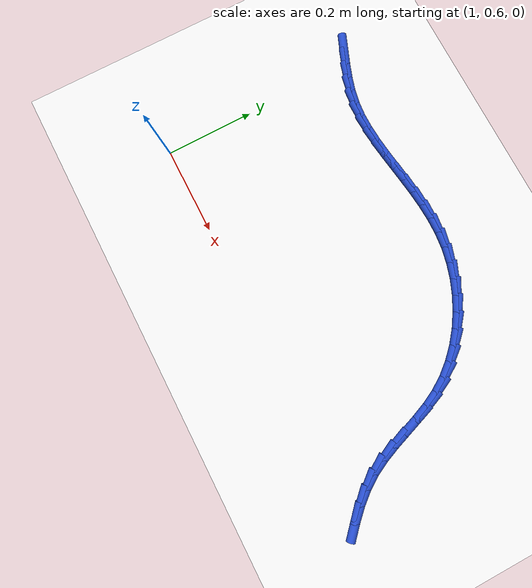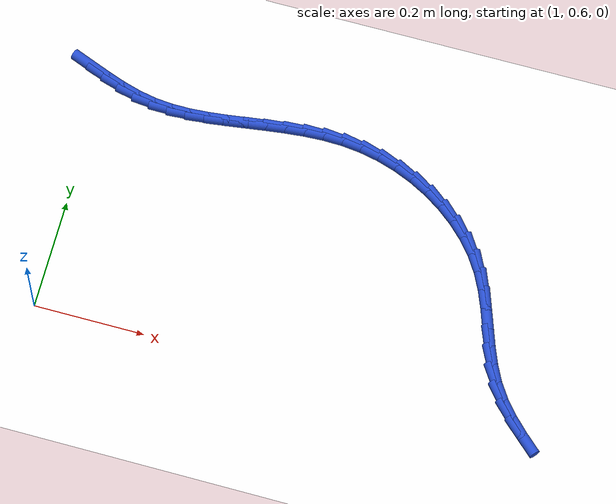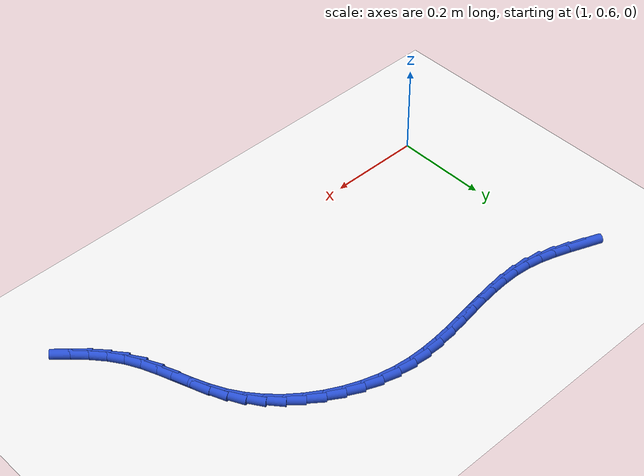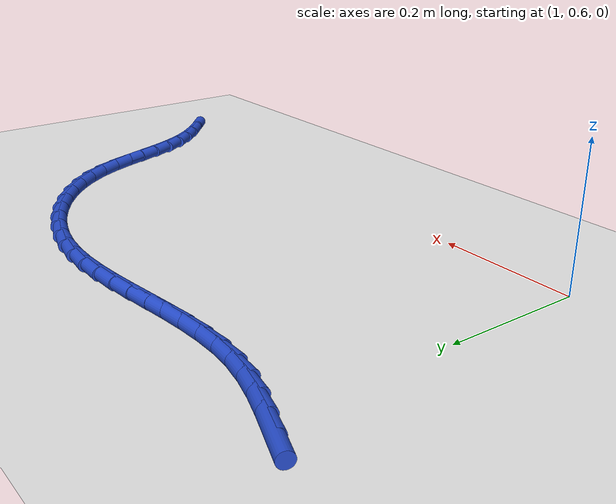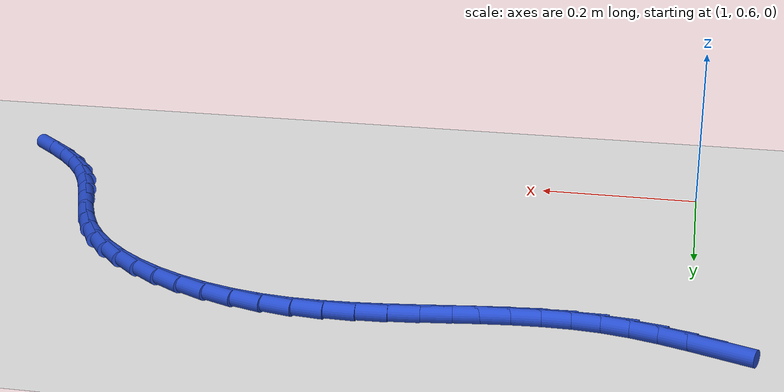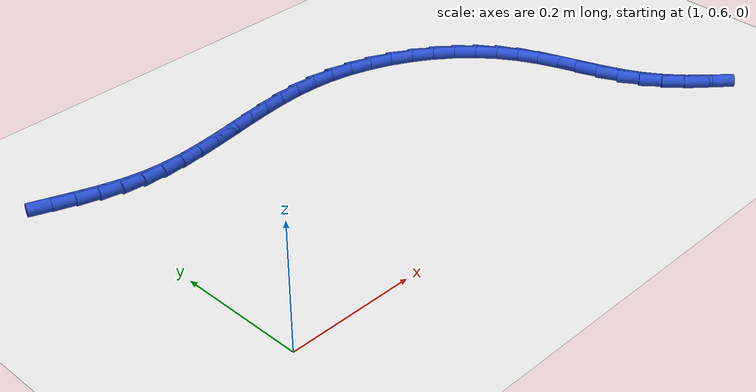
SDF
<sdf version="1.6">
 <world name="default">
  <model name="ground_plane">
   <static>1</static>
   <link name="link">
    <collision name="collision">
     <geometry><plane><normal>0 0 1</normal><size>100 100</size></plane></geometry>
     <surface><friction><ode><mu>100</mu><mu2>50</mu2></ode></friction></surface>
    </collision>
    <visual name="visual">
     <cast_shadows>0</cast_shadows>
     <geometry><plane><normal>0 0 1</normal><size>100 100</size></plane></geometry>
     <material>
      <script><uri>file://media/materials/scripts/gazebo.material</uri><name>Gazebo/WhiteGlow</name></script>
     </material>
    </visual>
   </link>
  </model>
  <model name="line">
   <link name="link_49">
    <pose>0.9694721577611478 1.0599744888120681 0.01 0 1.57 -0.37158965942968897</pose>
    <collision name="collision">
     <geometry><cylinder><radius>0.01</radius><length>0.08</length></cylinder></geometry>
    </collision>
    <visual name="visual">
     <material>
      <script><name>Gazebo/Blue</name><uri>file://media/materials/scripts/gazebo.material</uri></script>
     </material>
     <geometry><cylinder><radius>0.01</radius><length>0.08</length></cylinder></geometry>
    </visual>
   </link>
   <link name="link_50">
    <pose>1.001331518816741 1.0475591157711936 0.01 0 1.57 -0.3403551428548425</pose>
    <collision name="collision">
     <geometry><cylinder><radius>0.01</radius><length>0.08</length></cylinder></geometry>
    </collision>
    <visual name="visual">
     <material>
      <script><name>Gazebo/Blue</name><uri>file://media/materials/scripts/gazebo.material</uri></script>
     </material>
     <geometry><cylinder><radius>0.01</radius><length>0.08</length></cylinder></geometry>
    </visual>
   </link>
   <link name="link_51">
    <pose>1.0329152924165161 1.036374148413972 0.01 0 1.57 -0.2818989669265441</pose>
    <collision name="collision">
     <geometry><cylinder><radius>0.01</radius><length>0.08</length></cylinder></geometry>
    </collision>
    <visual name="visual">
     <material>
      <script><name>Gazebo/Blue</name><uri>file://media/materials/scripts/gazebo.material</uri></script>
     </material>
     <geometry><cylinder><radius>0.01</radius><length>0.08</length></cylinder></geometry>
    </visual>
   </link>
   <link name="link_52">
    <pose>1.0645469397779832 1.0272132614957707 0.01 0 1.57 -0.19566842280877916</pose>
    <collision name="collision">
     <geometry><cylinder><radius>0.01</radius><length>0.08</length></cylinder></geometry>
    </collision>
    <visual name="visual">
     <material>
      <script><name>Gazebo/Blue</name><uri>file://media/materials/scripts/gazebo.material</uri></script>
     </material>
     <geometry><cylinder><radius>0.01</radius><length>0.08</length></cylinder></geometry>
    </visual>
   </link>
   <link name="link_53">
    <pose>1.0965499221033381 1.0208701297156095 0.01 0 1.57 -0.0910905827970096</pose>
    <collision name="collision">
     <geometry><cylinder><radius>0.01</radius><length>0.08</length></cylinder></geometry>
    </collision>
    <visual name="visual">
     <material>
      <script><name>Gazebo/Blue</name><uri>file://media/materials/scripts/gazebo.material</uri></script>
     </material>
     <geometry><cylinder><radius>0.01</radius><length>0.08</length></cylinder></geometry>
    </visual>
   </link>
   <link name="link_54">
    <pose>1.1291800683508 1.0178895824220704 0.01 0 1.57 -0.001515008681421192</pose>
    <collision name="collision">
     <geometry><cylinder><radius>0.01</radius><length>0.08</length></cylinder></geometry>
    </collision>
    <visual name="visual">
     <material>
      <script><name>Gazebo/Blue</name><uri>file://media/materials/scripts/gazebo.material</uri></script>
     </material>
     <geometry><cylinder><radius>0.01</radius><length>0.08</length></cylinder></geometry>
    </visual>
   </link>
   <link name="link_55">
    <pose>1.1624276098938178 1.0178392120694593 0.01 0 1.57 0.06523859716427143</pose>
    <collision name="collision">
     <geometry><cylinder><radius>0.01</radius><length>0.08</length></cylinder></geometry>
    </collision>
    <visual name="visual">
     <material>
      <script><name>Gazebo/Blue</name><uri>file://media/materials/scripts/gazebo.material</uri></script>
     </material>
     <geometry><cylinder><radius>0.01</radius><length>0.08</length></cylinder></geometry>
    </visual>
   </link>
   <link name="link_56">
    <pose>1.196217589165755 1.0200467556276749 0.01 0 1.57 0.11027687657508883</pose>
    <collision name="collision">
     <geometry><cylinder><radius>0.01</radius><length>0.08</length></cylinder></geometry>
    </collision>
    <visual name="visual">
     <material>
      <script><name>Gazebo/Blue</name><uri>file://media/materials/scripts/gazebo.material</uri></script>
     </material>
     <geometry><cylinder><radius>0.01</radius><length>0.08</length></cylinder></geometry>
    </visual>
   </link>
   <link name="link_57">
    <pose>1.230475048599974 1.0238399500666189 0.01 0 1.57 0.13500591390225855</pose>
    <collision name="collision">
     <geometry><cylinder><radius>0.01</radius><length>0.08</length></cylinder></geometry>
    </collision>
    <visual name="visual">
     <material>
      <script><name>Gazebo/Blue</name><uri>file://media/materials/scripts/gazebo.material</uri></script>
     </material>
     <geometry><cylinder><radius>0.01</radius><length>0.08</length></cylinder></geometry>
    </visual>
   </link>
   <link name="link_58">
    <pose>1.2651250306298376 1.02854653235619 0.01 0 1.57 0.14056117292467457</pose>
    <collision name="collision">
     <geometry><cylinder><radius>0.01</radius><length>0.08</length></cylinder></geometry>
    </collision>
    <visual name="visual">
     <material>
      <script><name>Gazebo/Blue</name><uri>file://media/materials/scripts/gazebo.material</uri></script>
     </material>
     <geometry><cylinder><radius>0.01</radius><length>0.08</length></cylinder></geometry>
    </visual>
   </link>
   <link name="link_59">
    <pose>1.3000925776887093 1.0334942394662894 0.01 0 1.57 0.1275779175493634</pose>
    <collision name="collision">
     <geometry><cylinder><radius>0.01</radius><length>0.08</length></cylinder></geometry>
    </collision>
    <visual name="visual">
     <material>
      <script><name>Gazebo/Blue</name><uri>file://media/materials/scripts/gazebo.material</uri></script>
     </material>
     <geometry><cylinder><radius>0.01</radius><length>0.08</length></cylinder></geometry>
    </visual>
   </link>
   <link name="link_60">
    <pose>1.3353027322099518 1.0380108083668165 0.01 0 1.57 0.09617998112501255</pose>
    <collision name="collision">
     <geometry><cylinder><radius>0.01</radius><length>0.08</length></cylinder></geometry>
    </collision>
    <visual name="visual">
     <material>
      <script><name>Gazebo/Blue</name><uri>file://media/materials/scripts/gazebo.material</uri></script>
     </material>
     <geometry><cylinder><radius>0.01</radius><length>0.08</length></cylinder></geometry>
    </visual>
   </link>
   <link name="link_61">
    <pose>1.3706805366269272 1.0414239760276713 0.01 0 1.57 0.04613246864003099</pose>
    <collision name="collision">
     <geometry><cylinder><radius>0.01</radius><length>0.08</length></cylinder></geometry>
    </collision>
    <visual name="visual">
     <material>
      <script><name>Gazebo/Blue</name><uri>file://media/materials/scripts/gazebo.material</uri></script>
     </material>
     <geometry><cylinder><radius>0.01</radius><length>0.08</length></cylinder></geometry>
    </visual>
   </link>
   <link name="link_62">
    <pose>1.4061510333729998 1.043061479418755 0.01 0 1.57 -0.022832444425832977</pose>
    <collision name="collision">
     <geometry><cylinder><radius>0.01</radius><length>0.08</length></cylinder></geometry>
    </collision>
    <visual name="visual">
     <material>
      <script><name>Gazebo/Blue</name><uri>file://media/materials/scripts/gazebo.material</uri></script>
     </material>
     <geometry><cylinder><radius>0.01</radius><length>0.08</length></cylinder></geometry>
    </visual>
   </link>
   <link name="link_63">
    <pose>1.4416392648815313 1.0422510555099664 0.01 0 1.57 -0.1103382181605313</pose>
    <collision name="collision">
     <geometry><cylinder><radius>0.01</radius><length>0.08</length></cylinder></geometry>
    </collision>
    <visual name="visual">
     <material>
      <script><name>Gazebo/Blue</name><uri>file://media/materials/scripts/gazebo.material</uri></script>
     </material>
     <geometry><cylinder><radius>0.01</radius><length>0.08</length></cylinder></geometry>
    </visual>
   </link>
   <link name="link_64">
    <pose>1.4770681905299143 1.038325949274656 0.01 0 1.57 -0.20709685738291175</pose>
    <collision name="collision">
     <geometry><cylinder><radius>0.01</radius><length>0.08</length></cylinder></geometry>
    </collision>
    <visual name="visual">
     <material>
      <script><name>Gazebo/Blue</name><uri>file://media/materials/scripts/gazebo.material</uri></script>
     </material>
     <geometry><cylinder><radius>0.01</radius><length>0.08</length></cylinder></geometry>
    </visual>
   </link>
   <link name="link_65">
    <pose>1.5122411168408423 1.0309357910093828 0.01 0 1.57 -0.30103909492169634</pose>
    <collision name="collision">
     <geometry><cylinder><radius>0.01</radius><length>0.08</length></cylinder></geometry>
    </collision>
    <visual name="visual">
     <material>
      <script><name>Gazebo/Blue</name><uri>file://media/materials/scripts/gazebo.material</uri></script>
     </material>
     <geometry><cylinder><radius>0.01</radius><length>0.08</length></cylinder></geometry>
    </visual>
   </link>
   <link name="link_66">
    <pose>1.5467788901971713 1.020212670960871 0.01 0 1.57 -0.39279809596097404</pose>
    <collision name="collision">
     <geometry><cylinder><radius>0.01</radius><length>0.08</length></cylinder></geometry>
    </collision>
    <visual name="visual">
     <material>
      <script><name>Gazebo/Blue</name><uri>file://media/materials/scripts/gazebo.material</uri></script>
     </material>
     <geometry><cylinder><radius>0.01</radius><length>0.08</length></cylinder></geometry>
    </visual>
   </link>
   <link name="link_67">
    <pose>1.5802870071575774 1.0063292672840607 0.01 0 1.57 -0.4841048140478903</pose>
    <collision name="collision">
     <geometry><cylinder><radius>0.01</radius><length>0.08</length></cylinder></geometry>
    </collision>
    <visual name="visual">
     <material>
      <script><name>Gazebo/Blue</name><uri>file://media/materials/scripts/gazebo.material</uri></script>
     </material>
     <geometry><cylinder><radius>0.01</radius><length>0.08</length></cylinder></geometry>
    </visual>
   </link>
   <link name="link_68">
    <pose>1.6123709642807358 0.9894582581338924 0.01 0 1.57 -0.5766886230052523</pose>
    <collision name="collision">
     <geometry><cylinder><radius>0.01</radius><length>0.08</length></cylinder></geometry>
    </collision>
    <visual name="visual">
     <material>
      <script><name>Gazebo/Blue</name><uri>file://media/materials/scripts/gazebo.material</uri></script>
     </material>
     <geometry><cylinder><radius>0.01</radius><length>0.08</length></cylinder></geometry>
    </visual>
   </link>
   <link name="link_69">
    <pose>1.6426362581253238 0.9697723216653069 0.01 0 1.57 -0.6722686207958498</pose>
    <collision name="collision">
     <geometry><cylinder><radius>0.01</radius><length>0.08</length></cylinder></geometry>
    </collision>
    <visual name="visual">
     <material>
      <script><name>Gazebo/Blue</name><uri>file://media/materials/scripts/gazebo.material</uri></script>
     </material>
     <geometry><cylinder><radius>0.01</radius><length>0.08</length></cylinder></geometry>
    </visual>
   </link>
   <link name="link_70">
    <pose>1.670688385250016 0.9474441360332443 0.01 0 1.57 -0.7725272215130539</pose>
    <collision name="collision">
     <geometry><cylinder><radius>0.01</radius><length>0.08</length></cylinder></geometry>
    </collision>
    <visual name="visual">
     <material>
      <script><name>Gazebo/Blue</name><uri>file://media/materials/scripts/gazebo.material</uri></script>
     </material>
     <geometry><cylinder><radius>0.01</radius><length>0.08</length></cylinder></geometry>
    </visual>
   </link>
   <link name="link_71">
    <pose>1.6961328422134891 0.9226463793926456 0.01 0 1.57 -0.8790406072689028</pose>
    <collision name="collision">
     <geometry><cylinder><radius>0.01</radius><length>0.08</length></cylinder></geometry>
    </collision>
    <visual name="visual">
     <material>
      <script><name>Gazebo/Blue</name><uri>file://media/materials/scripts/gazebo.material</uri></script>
     </material>
     <geometry><cylinder><radius>0.01</radius><length>0.08</length></cylinder></geometry>
    </visual>
   </link>
   <link name="link_72">
    <pose>1.7185751255744197 0.8955517298984504 0.01 0 1.57 -0.9931387269546321</pose>
    <collision name="collision">
     <geometry><cylinder><radius>0.01</radius><length>0.08</length></cylinder></geometry>
    </collision>
    <visual name="visual">
     <material>
      <script><name>Gazebo/Blue</name><uri>file://media/materials/scripts/gazebo.material</uri></script>
     </material>
     <geometry><cylinder><radius>0.01</radius><length>0.08</length></cylinder></geometry>
    </visual>
   </link>
   <link name="link_73">
    <pose>1.7376207323085797 0.8663328658355247 0.01 0 1.57 -1.1072463781847635</pose>
    <collision name="collision">
     <geometry><cylinder><radius>0.01</radius><length>0.08</length></cylinder></geometry>
    </collision>
    <visual name="visual">
     <material>
      <script><name>Gazebo/Blue</name><uri>file://media/materials/scripts/gazebo.material</uri></script>
     </material>
     <geometry><cylinder><radius>0.01</radius><length>0.08</length></cylinder></geometry>
    </visual>
   </link>
   <link name="link_74">
    <pose>1.753158074486359 0.8352505930832348 0.01 0 1.57 -1.188345618046412</pose>
    <collision name="collision">
     <geometry><cylinder><radius>0.01</radius><length>0.08</length></cylinder></geometry>
    </collision>
    <visual name="visual">
     <material>
      <script><name>Gazebo/Blue</name><uri>file://media/materials/scripts/gazebo.material</uri></script>
     </material>
     <geometry><cylinder><radius>0.01</radius><length>0.08</length></cylinder></geometry>
    </visual>
   </link>
   <link name="link_75">
    <pose>1.7661688136119358 0.8029062629517916 0.01 0 1.57 -1.2285351684633101</pose>
    <collision name="collision">
     <geometry><cylinder><radius>0.01</radius><length>0.08</length></cylinder></geometry>
    </collision>
    <visual name="visual">
     <material>
      <script><name>Gazebo/Blue</name><uri>file://media/materials/scripts/gazebo.material</uri></script>
     </material>
     <geometry><cylinder><radius>0.01</radius><length>0.08</length></cylinder></geometry>
    </visual>
   </link>
   <link name="link_76">
    <pose>1.7778986445909506 0.7699834727290222 0.01 0 1.57 -1.228474457304217</pose>
    <collision name="collision">
     <geometry><cylinder><radius>0.01</radius><length>0.08</length></cylinder></geometry>
    </collision>
    <visual name="visual">
     <material>
      <script><name>Gazebo/Blue</name><uri>file://media/materials/scripts/gazebo.material</uri></script>
     </material>
     <geometry><cylinder><radius>0.01</radius><length>0.08</length></cylinder></geometry>
    </visual>
   </link>
   <link name="link_77">
    <pose>1.789593262329044 0.7371658197027526 0.01 0 1.57 -1.1877750430193321</pose>
    <collision name="collision">
     <geometry><cylinder><radius>0.01</radius><length>0.08</length></cylinder></geometry>
    </collision>
    <visual name="visual">
     <material>
      <script><name>Gazebo/Blue</name><uri>file://media/materials/scripts/gazebo.material</uri></script>
     </material>
     <geometry><cylinder><radius>0.01</radius><length>0.08</length></cylinder></geometry>
    </visual>
   </link>
   <link name="link_78">
    <pose>1.8024983617318575 0.7051369011608095 0.01 0 1.57 -1.1049785169353048</pose>
    <collision name="collision">
     <geometry><cylinder><radius>0.01</radius><length>0.08</length></cylinder></geometry>
    </collision>
    <visual name="visual">
     <material>
      <script><name>Gazebo/Blue</name><uri>file://media/materials/scripts/gazebo.material</uri></script>
     </material>
     <geometry><cylinder><radius>0.01</radius><length>0.08</length></cylinder></geometry>
    </visual>
   </link>
   <link name="link_79">
    <pose>1.8178596377050327 0.6745803143910197 0.01 0 1.57 -0.9848775909268559</pose>
    <collision name="collision">
     <geometry><cylinder><radius>0.01</radius><length>0.08</length></cylinder></geometry>
    </collision>
    <visual name="visual">
     <material>
      <script><name>Gazebo/Blue</name><uri>file://media/materials/scripts/gazebo.material</uri></script>
     </material>
     <geometry><cylinder><radius>0.01</radius><length>0.08</length></cylinder></geometry>
    </visual>
   </link>
   <link name="link_80">
    <pose>1.8367650013761105 0.6460938293238604 0.01 0 1.57 -0.8732828910092946</pose>
    <collision name="collision">
     <geometry><cylinder><radius>0.01</radius><length>0.08</length></cylinder></geometry>
    </collision>
    <visual name="visual">
     <material>
      <script><name>Gazebo/Blue</name><uri>file://media/materials/scripts/gazebo.material</uri></script>
     </material>
     <geometry><cylinder><radius>0.01</radius><length>0.08</length></cylinder></geometry>
    </visual>
   </link>
   <link name="link_81">
    <pose>1.8589971825962617 0.6195652553275683 0.01 0 1.57 -0.7921494863658731</pose>
    <collision name="collision">
     <geometry><cylinder><radius>0.01</radius><length>0.08</length></cylinder></geometry>
    </collision>
    <visual name="visual">
     <material>
      <script><name>Gazebo/Blue</name><uri>file://media/materials/scripts/gazebo.material</uri></script>
     </material>
     <geometry><cylinder><radius>0.01</radius><length>0.08</length></cylinder></geometry>
    </visual>
   </link>
   <link name="link_82">
    <pose>1.8836947030084998 0.5945319811583597 0.01 0 1.57 -0.7398277532076821</pose>
    <collision name="collision">
     <geometry><cylinder><radius>0.01</radius><length>0.08</length></cylinder></geometry>
    </collision>
    <visual name="visual">
     <material>
      <script><name>Gazebo/Blue</name><uri>file://media/materials/scripts/gazebo.material</uri></script>
     </material>
     <geometry><cylinder><radius>0.01</radius><length>0.08</length></cylinder></geometry>
    </visual>
   </link>
  </model>
 </world>
</sdf>
